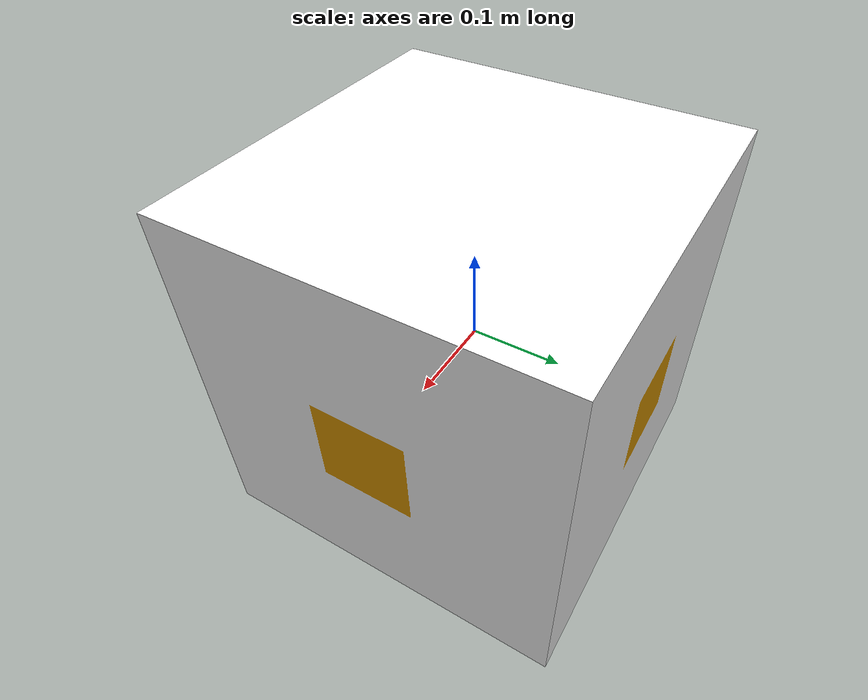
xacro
<?xml version="1.0"?>
<robot name="movable_box"
  xmlns:xacro="http://ros.org/wiki/xacro">
  <xacro:arg name="box_size" default="0.4" />
  <xacro:property name="box_size" value="$(arg box_size)" />

  <xacro:macro name="box_inertia" params="m w h d">
    <inertial>
      <origin xyz="0 0 0" rpy="${pi/2} 0 ${pi/2}" />
      <mass value="${m}" />
      <inertia ixx="${(m/12) * (h*h + d*d)}" ixy="0.0" ixz="0.0" iyy="${(m/12) * (w*w + d*d)}"
        iyz="0.0" izz="${(m/12) * (w*w + h*h)}" />
    </inertial>
  </xacro:macro>
  <link name="box">
    <xacro:box_inertia m="0.001" w="${box_size}" d="${box_size}" h="${box_size}" />
    <visual>
      <geometry>
        <!-- new mesh -->
        <mesh filename="package://namoros/models/movable_box/aruco_301.dae" />
      </geometry>
      <origin xyz="0 0 -0.2" rpy="0 0 0" />
    </visual>
    <collision>
      <geometry>
        <box size="${box_size} ${box_size} ${box_size}" />
      </geometry>
    </collision>
  </link>
  <gazebo>
    <plugin filename="gz-sim-pose-publisher-system"
      name="gz::sim::systems::PosePublisher">
      <publish_link_pose>false</publish_link_pose>
      <publish_nested_model_pose>true</publish_nested_model_pose>
      <use_pose_vector_msg>true</use_pose_vector_msg>
      <update_frequency>30</update_frequency>
    </plugin>
  </gazebo>
</robot>
